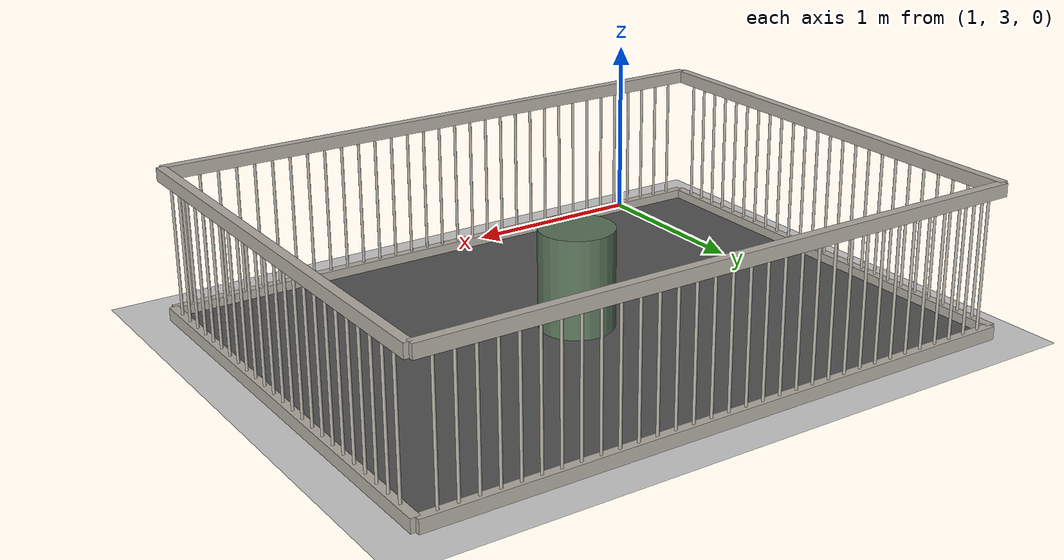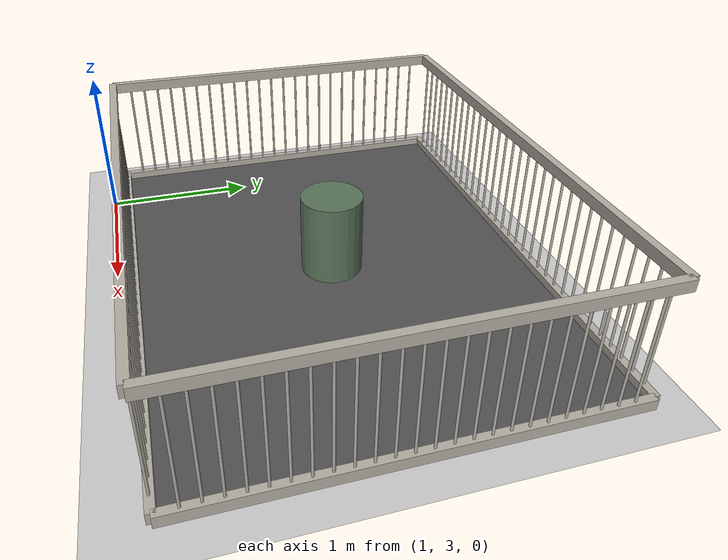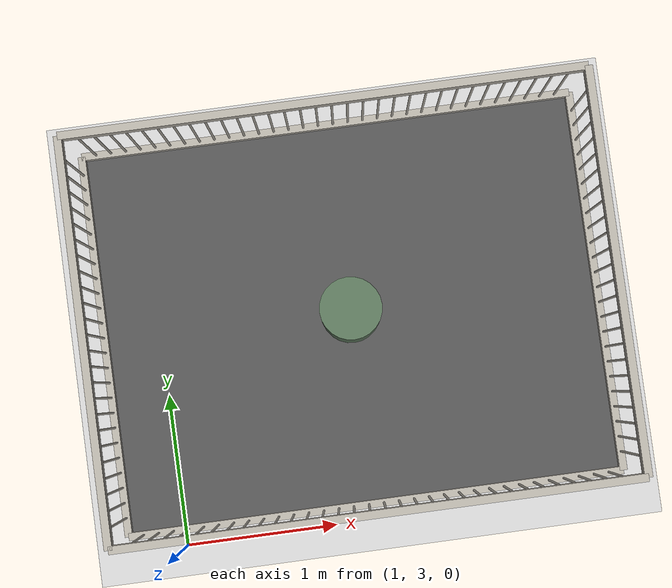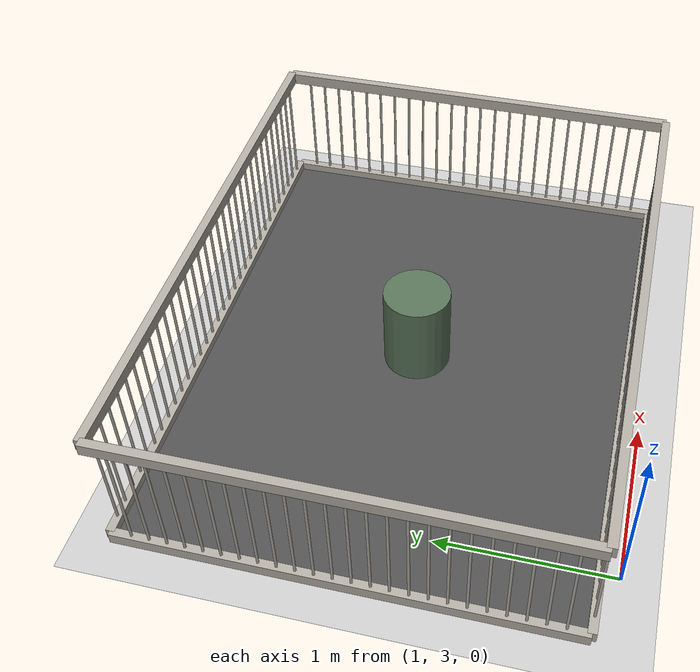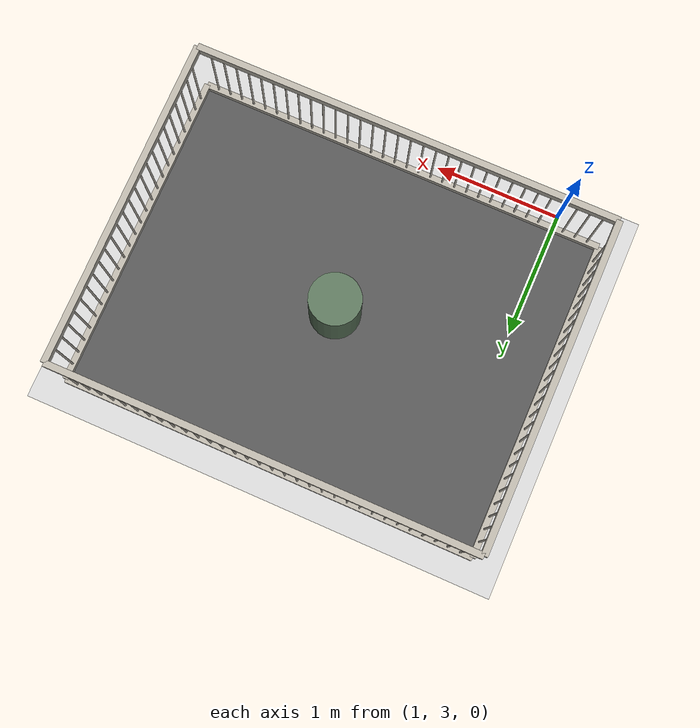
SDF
<sdf version="1.9">
 <world name="pig_pen_16units_world">
  <model name="ground_plane">
   <static>true</static>
   <link name="link">
    <collision name="collision">
     <geometry><plane><normal>0 0 1</normal><size>30 30</size></plane></geometry>
     <surface><friction><ode><mu>1.0</mu><mu2>1.0</mu2></ode></friction></surface>
    </collision>
    <visual name="visual">
     <geometry><plane><normal>0 0 1</normal><size>30 30</size></plane></geometry>
     <material>
      <ambient>0.8 0.8 0.8 1</ambient>
      <diffuse>0.8 0.8 0.8 1</diffuse>
      <specular>0.2 0.2 0.2 1</specular>
     </material>
    </visual>
   </link>
  </model>
  <model name="pen13">
   <pose>2.275 4.385 0 0 0 0</pose>
   <static>true</static>
   <link name="floor">
    <pose>0 0 0.01 0 0 0</pose>
    <collision name="collision"><geometry><box><size>3.30 2.55 0.02</size></box></geometry></collision>
    <visual name="visual">
     <geometry><box><size>3.30 2.55 0.02</size></box></geometry>
     <material>
      <ambient>0.25 0.25 0.25 1</ambient>
      <diffuse>0.32 0.32 0.32 1</diffuse>
      <specular>0.05 0.05 0.05 1</specular>
     </material>
    </visual>
   </link>
   <link name="left_wall">
    <pose>0 1.275 0.415 0 0 0</pose>
    <collision name="top_rail_col">
     <pose>0 0 0.38 0 0 0</pose>
     <geometry><box><size>3.30 0.05 0.07</size></box></geometry>
    </collision>
    <visual name="top_rail_vis">
     <pose>0 0 0.38 0 0 0</pose>
     <geometry><box><size>3.30 0.05 0.07</size></box></geometry>
     <material><ambient>0.70 0.68 0.64 1</ambient><diffuse>0.70 0.68 0.64 1</diffuse></material>
    </visual>
    <collision name="bottom_rail_col">
     <pose>0 0 -0.38 0 0 0</pose>
     <geometry><box><size>3.30 0.05 0.07</size></box></geometry>
    </collision>
    <visual name="bottom_rail_vis">
     <pose>0 0 -0.38 0 0 0</pose>
     <geometry><box><size>3.30 0.05 0.07</size></box></geometry>
     <material><ambient>0.70 0.68 0.64 1</ambient><diffuse>0.70 0.68 0.64 1</diffuse></material>
    </visual>
    <collision name="bar_01_col">
     <pose>-1.55 0 0 0 0 0</pose>
     <geometry><cylinder><radius>0.0075</radius><length>0.69</length></cylinder></geometry>
    </collision>
    <visual name="bar_01_vis">
     <pose>-1.55 0 0 0 0 0</pose>
     <geometry><cylinder><radius>0.0075</radius><length>0.69</length></cylinder></geometry>
     <material><ambient>0.70 0.68 0.64 1</ambient><diffuse>0.70 0.68 0.64 1</diffuse></material>
    </visual>
    <collision name="bar_02_col">
     <pose>-1.45 0 0 0 0 0</pose>
     <geometry><cylinder><radius>0.0075</radius><length>0.69</length></cylinder></geometry>
    </collision>
    <visual name="bar_02_vis">
     <pose>-1.45 0 0 0 0 0</pose>
     <geometry><cylinder><radius>0.0075</radius><length>0.69</length></cylinder></geometry>
     <material><ambient>0.70 0.68 0.64 1</ambient><diffuse>0.70 0.68 0.64 1</diffuse></material>
    </visual>
    <collision name="bar_03_col">
     <pose>-1.35 0 0 0 0 0</pose>
     <geometry><cylinder><radius>0.0075</radius><length>0.69</length></cylinder></geometry>
    </collision>
    <visual name="bar_03_vis">
     <pose>-1.35 0 0 0 0 0</pose>
     <geometry><cylinder><radius>0.0075</radius><length>0.69</length></cylinder></geometry>
     <material><ambient>0.70 0.68 0.64 1</ambient><diffuse>0.70 0.68 0.64 1</diffuse></material>
    </visual>
    <collision name="bar_04_col">
     <pose>-1.25 0 0 0 0 0</pose>
     <geometry><cylinder><radius>0.0075</radius><length>0.69</length></cylinder></geometry>
    </collision>
    <visual name="bar_04_vis">
     <pose>-1.25 0 0 0 0 0</pose>
     <geometry><cylinder><radius>0.0075</radius><length>0.69</length></cylinder></geometry>
     <material><ambient>0.70 0.68 0.64 1</ambient><diffuse>0.70 0.68 0.64 1</diffuse></material>
    </visual>
    <collision name="bar_05_col">
     <pose>-1.15 0 0 0 0 0</pose>
     <geometry><cylinder><radius>0.0075</radius><length>0.69</length></cylinder></geometry>
    </collision>
    <visual name="bar_05_vis">
     <pose>-1.15 0 0 0 0 0</pose>
     <geometry><cylinder><radius>0.0075</radius><length>0.69</length></cylinder></geometry>
     <material><ambient>0.70 0.68 0.64 1</ambient><diffuse>0.70 0.68 0.64 1</diffuse></material>
    </visual>
    <collision name="bar_06_col">
     <pose>-1.05 0 0 0 0 0</pose>
     <geometry><cylinder><radius>0.0075</radius><length>0.69</length></cylinder></geometry>
    </collision>
    <visual name="bar_06_vis">
     <pose>-1.05 0 0 0 0 0</pose>
     <geometry><cylinder><radius>0.0075</radius><length>0.69</length></cylinder></geometry>
     <material><ambient>0.70 0.68 0.64 1</ambient><diffuse>0.70 0.68 0.64 1</diffuse></material>
    </visual>
    <collision name="bar_07_col">
     <pose>-0.95 0 0 0 0 0</pose>
     <geometry><cylinder><radius>0.0075</radius><length>0.69</length></cylinder></geometry>
    </collision>
    <visual name="bar_07_vis">
     <pose>-0.95 0 0 0 0 0</pose>
     <geometry><cylinder><radius>0.0075</radius><length>0.69</length></cylinder></geometry>
     <material><ambient>0.70 0.68 0.64 1</ambient><diffuse>0.70 0.68 0.64 1</diffuse></material>
    </visual>
    <collision name="bar_08_col">
     <pose>-0.85 0 0 0 0 0</pose>
     <geometry><cylinder><radius>0.0075</radius><length>0.69</length></cylinder></geometry>
    </collision>
    <visual name="bar_08_vis">
     <pose>-0.85 0 0 0 0 0</pose>
     <geometry><cylinder><radius>0.0075</radius><length>0.69</length></cylinder></geometry>
     <material><ambient>0.70 0.68 0.64 1</ambient><diffuse>0.70 0.68 0.64 1</diffuse></material>
    </visual>
    <collision name="bar_09_col">
     <pose>-0.75 0 0 0 0 0</pose>
     <geometry><cylinder><radius>0.0075</radius><length>0.69</length></cylinder></geometry>
    </collision>
    <visual name="bar_09_vis">
     <pose>-0.75 0 0 0 0 0</pose>
     <geometry><cylinder><radius>0.0075</radius><length>0.69</length></cylinder></geometry>
     <material><ambient>0.70 0.68 0.64 1</ambient><diffuse>0.70 0.68 0.64 1</diffuse></material>
    </visual>
    <collision name="bar_10_col">
     <pose>-0.65 0 0 0 0 0</pose>
     <geometry><cylinder><radius>0.0075</radius><length>0.69</length></cylinder></geometry>
    </collision>
    <visual name="bar_10_vis">
     <pose>-0.65 0 0 0 0 0</pose>
     <geometry><cylinder><radius>0.0075</radius><length>0.69</length></cylinder></geometry>
     <material><ambient>0.70 0.68 0.64 1</ambient><diffuse>0.70 0.68 0.64 1</diffuse></material>
    </visual>
    <collision name="bar_11_col">
     <pose>-0.55 0 0 0 0 0</pose>
     <geometry><cylinder><radius>0.0075</radius><length>0.69</length></cylinder></geometry>
    </collision>
    <visual name="bar_11_vis">
     <pose>-0.55 0 0 0 0 0</pose>
     <geometry><cylinder><radius>0.0075</radius><length>0.69</length></cylinder></geometry>
     <material><ambient>0.70 0.68 0.64 1</ambient><diffuse>0.70 0.68 0.64 1</diffuse></material>
    </visual>
    <collision name="bar_12_col">
     <pose>-0.45 0 0 0 0 0</pose>
     <geometry><cylinder><radius>0.0075</radius><length>0.69</length></cylinder></geometry>
    </collision>
    <visual name="bar_12_vis">
     <pose>-0.45 0 0 0 0 0</pose>
     <geometry><cylinder><radius>0.0075</radius><length>0.69</length></cylinder></geometry>
     <material><ambient>0.70 0.68 0.64 1</ambient><diffuse>0.70 0.68 0.64 1</diffuse></material>
    </visual>
    <collision name="bar_13_col">
     <pose>-0.35 0 0 0 0 0</pose>
     <geometry><cylinder><radius>0.0075</radius><length>0.69</length></cylinder></geometry>
    </collision>
    <visual name="bar_13_vis">
     <pose>-0.35 0 0 0 0 0</pose>
     <geometry><cylinder><radius>0.0075</radius><length>0.69</length></cylinder></geometry>
     <material><ambient>0.70 0.68 0.64 1</ambient><diffuse>0.70 0.68 0.64 1</diffuse></material>
    </visual>
    <collision name="bar_14_col">
     <pose>-0.25 0 0 0 0 0</pose>
     <geometry><cylinder><radius>0.0075</radius><length>0.69</length></cylinder></geometry>
    </collision>
    <visual name="bar_14_vis">
     <pose>-0.25 0 0 0 0 0</pose>
     <geometry><cylinder><radius>0.0075</radius><length>0.69</length></cylinder></geometry>
     <material><ambient>0.70 0.68 0.64 1</ambient><diffuse>0.70 0.68 0.64 1</diffuse></material>
    </visual>
    <collision name="bar_15_col">
     <pose>-0.15 0 0 0 0 0</pose>
     <geometry><cylinder><radius>0.0075</radius><length>0.69</length></cylinder></geometry>
    </collision>
    <visual name="bar_15_vis">
     <pose>-0.15 0 0 0 0 0</pose>
     <geometry><cylinder><radius>0.0075</radius><length>0.69</length></cylinder></geometry>
     <material><ambient>0.70 0.68 0.64 1</ambient><diffuse>0.70 0.68 0.64 1</diffuse></material>
    </visual>
    <collision name="bar_16_col">
     <pose>-0.05 0 0 0 0 0</pose>
     <geometry><cylinder><radius>0.0075</radius><length>0.69</length></cylinder></geometry>
    </collision>
    <visual name="bar_16_vis">
     <pose>-0.05 0 0 0 0 0</pose>
     <geometry><cylinder><radius>0.0075</radius><length>0.69</length></cylinder></geometry>
     <material><ambient>0.70 0.68 0.64 1</ambient><diffuse>0.70 0.68 0.64 1</diffuse></material>
    </visual>
    <collision name="bar_17_col">
     <pose>0.05 0 0 0 0 0</pose>
     <geometry><cylinder><radius>0.0075</radius><length>0.69</length></cylinder></geometry>
    </collision>
    <visual name="bar_17_vis">
     <pose>0.05 0 0 0 0 0</pose>
     <geometry><cylinder><radius>0.0075</radius><length>0.69</length></cylinder></geometry>
     <material><ambient>0.70 0.68 0.64 1</ambient><diffuse>0.70 0.68 0.64 1</diffuse></material>
    </visual>
    <collision name="bar_18_col">
     <pose>0.15 0 0 0 0 0</pose>
     <geometry><cylinder><radius>0.0075</radius><length>0.69</length></cylinder></geometry>
    </collision>
    <visual name="bar_18_vis">
     <pose>0.15 0 0 0 0 0</pose>
     <geometry><cylinder><radius>0.0075</radius><length>0.69</length></cylinder></geometry>
     <material><ambient>0.70 0.68 0.64 1</ambient><diffuse>0.70 0.68 0.64 1</diffuse></material>
    </visual>
    <collision name="bar_19_col">
     <pose>0.25 0 0 0 0 0</pose>
     <geometry><cylinder><radius>0.0075</radius><length>0.69</length></cylinder></geometry>
    </collision>
    <visual name="bar_19_vis">
     <pose>0.25 0 0 0 0 0</pose>
     <geometry><cylinder><radius>0.0075</radius><length>0.69</length></cylinder></geometry>
     <material><ambient>0.70 0.68 0.64 1</ambient><diffuse>0.70 0.68 0.64 1</diffuse></material>
    </visual>
    <collision name="bar_20_col">
     <pose>0.35 0 0 0 0 0</pose>
     <geometry><cylinder><radius>0.0075</radius><length>0.69</length></cylinder></geometry>
    </collision>
    <visual name="bar_20_vis">
     <pose>0.35 0 0 0 0 0</pose>
     <geometry><cylinder><radius>0.0075</radius><length>0.69</length></cylinder></geometry>
     <material><ambient>0.70 0.68 0.64 1</ambient><diffuse>0.70 0.68 0.64 1</diffuse></material>
    </visual>
    <collision name="bar_21_col">
     <pose>0.45 0 0 0 0 0</pose>
     <geometry><cylinder><radius>0.0075</radius><length>0.69</length></cylinder></geometry>
    </collision>
    <visual name="bar_21_vis">
     <pose>0.45 0 0 0 0 0</pose>
     <geometry><cylinder><radius>0.0075</radius><length>0.69</length></cylinder></geometry>
     <material><ambient>0.70 0.68 0.64 1</ambient><diffuse>0.70 0.68 0.64 1</diffuse></material>
    </visual>
    <collision name="bar_22_col">
     <pose>0.55 0 0 0 0 0</pose>
     <geometry><cylinder><radius>0.0075</radius><length>0.69</length></cylinder></geometry>
    </collision>
    <visual name="bar_22_vis">
     <pose>0.55 0 0 0 0 0</pose>
     <geometry><cylinder><radius>0.0075</radius><length>0.69</length></cylinder></geometry>
     <material><ambient>0.70 0.68 0.64 1</ambient><diffuse>0.70 0.68 0.64 1</diffuse></material>
    </visual>
    <collision name="bar_23_col">
     <pose>0.65 0 0 0 0 0</pose>
     <geometry><cylinder><radius>0.0075</radius><length>0.69</length></cylinder></geometry>
    </collision>
    <visual name="bar_23_vis">
     <pose>0.65 0 0 0 0 0</pose>
     <geometry><cylinder><radius>0.0075</radius><length>0.69</length></cylinder></geometry>
     <material><ambient>0.70 0.68 0.64 1</ambient><diffuse>0.70 0.68 0.64 1</diffuse></material>
    </visual>
    <collision name="bar_24_col">
     <pose>0.75 0 0 0 0 0</pose>
     <geometry><cylinder><radius>0.0075</radius><length>0.69</length></cylinder></geometry>
    </collision>
    <visual name="bar_24_vis">
     <pose>0.75 0 0 0 0 0</pose>
     <geometry><cylinder><radius>0.0075</radius><length>0.69</length></cylinder></geometry>
     <material><ambient>0.70 0.68 0.64 1</ambient><diffuse>0.70 0.68 0.64 1</diffuse></material>
    </visual>
    <collision name="bar_25_col">
     <pose>0.85 0 0 0 0 0</pose>
     <geometry><cylinder><radius>0.0075</radius><length>0.69</length></cylinder></geometry>
    </collision>
    <visual name="bar_25_vis">
     <pose>0.85 0 0 0 0 0</pose>
     <geometry><cylinder><radius>0.0075</radius><length>0.69</length></cylinder></geometry>
     <material><ambient>0.70 0.68 0.64 1</ambient><diffuse>0.70 0.68 0.64 1</diffuse></material>
    </visual>
    <collision name="bar_26_col">
     <pose>0.95 0 0 0 0 0</pose>
     <geometry><cylinder><radius>0.0075</radius><length>0.69</length></cylinder></geometry>
    </collision>
    <visual name="bar_26_vis">
     <pose>0.95 0 0 0 0 0</pose>
     <geometry><cylinder><radius>0.0075</radius><length>0.69</length></cylinder></geometry>
     <material><ambient>0.70 0.68 0.64 1</ambient><diffuse>0.70 0.68 0.64 1</diffuse></material>
    </visual>
    <collision name="bar_27_col">
     <pose>1.05 0 0 0 0 0</pose>
     <geometry><cylinder><radius>0.0075</radius><length>0.69</length></cylinder></geometry>
    </collision>
    <visual name="bar_27_vis">
     <pose>1.05 0 0 0 0 0</pose>
     <geometry><cylinder><radius>0.0075</radius><length>0.69</length></cylinder></geometry>
     <material><ambient>0.70 0.68 0.64 1</ambient><diffuse>0.70 0.68 0.64 1</diffuse></material>
    </visual>
    <collision name="bar_28_col">
     <pose>1.15 0 0 0 0 0</pose>
     <geometry><cylinder><radius>0.0075</radius><length>0.69</length></cylinder></geometry>
    </collision>
    <visual name="bar_28_vis">
     <pose>1.15 0 0 0 0 0</pose>
     <geometry><cylinder><radius>0.0075</radius><length>0.69</length></cylinder></geometry>
     <material><ambient>0.70 0.68 0.64 1</ambient><diffuse>0.70 0.68 0.64 1</diffuse></material>
    </visual>
    <collision name="bar_29_col">
     <pose>1.25 0 0 0 0 0</pose>
     <geometry><cylinder><radius>0.0075</radius><length>0.69</length></cylinder></geometry>
    </collision>
    <visual name="bar_29_vis">
     <pose>1.25 0 0 0 0 0</pose>
     <geometry><cylinder><radius>0.0075</radius><length>0.69</length></cylinder></geometry>
     <material><ambient>0.70 0.68 0.64 1</ambient><diffuse>0.70 0.68 0.64 1</diffuse></material>
    </visual>
    <collision name="bar_30_col">
     <pose>1.35 0 0 0 0 0</pose>
     <geometry><cylinder><radius>0.0075</radius><length>0.69</length></cylinder></geometry>
    </collision>
    <visual name="bar_30_vis">
     <pose>1.35 0 0 0 0 0</pose>
     <geometry><cylinder><radius>0.0075</radius><length>0.69</length></cylinder></geometry>
     <material><ambient>0.70 0.68 0.64 1</ambient><diffuse>0.70 0.68 0.64 1</diffuse></material>
    </visual>
    <collision name="bar_31_col">
     <pose>1.45 0 0 0 0 0</pose>
     <geometry><cylinder><radius>0.0075</radius><length>0.69</length></cylinder></geometry>
    </collision>
    <visual name="bar_31_vis">
     <pose>1.45 0 0 0 0 0</pose>
     <geometry><cylinder><radius>0.0075</radius><length>0.69</length></cylinder></geometry>
     <material><ambient>0.70 0.68 0.64 1</ambient><diffuse>0.70 0.68 0.64 1</diffuse></material>
    </visual>
    <collision name="bar_32_col">
     <pose>1.55 0 0 0 0 0</pose>
     <geometry><cylinder><radius>0.0075</radius><length>0.69</length></cylinder></geometry>
    </collision>
    <visual name="bar_32_vis">
     <pose>1.55 0 0 0 0 0</pose>
     <geometry><cylinder><radius>0.0075</radius><length>0.69</length></cylinder></geometry>
     <material><ambient>0.70 0.68 0.64 1</ambient><diffuse>0.70 0.68 0.64 1</diffuse></material>
    </visual>
   </link>
   <link name="right_wall">
    <pose>0 -1.275 0.415 0 0 0</pose>
    <collision name="top_rail_col">
     <pose>0 0 0.38 0 0 0</pose>
     <geometry><box><size>3.30 0.05 0.07</size></box></geometry>
    </collision>
    <visual name="top_rail_vis">
     <pose>0 0 0.38 0 0 0</pose>
     <geometry><box><size>3.30 0.05 0.07</size></box></geometry>
     <material><ambient>0.70 0.68 0.64 1</ambient><diffuse>0.70 0.68 0.64 1</diffuse></material>
    </visual>
    <collision name="bottom_rail_col">
     <pose>0 0 -0.38 0 0 0</pose>
     <geometry><box><size>3.30 0.05 0.07</size></box></geometry>
    </collision>
    <visual name="bottom_rail_vis">
     <pose>0 0 -0.38 0 0 0</pose>
     <geometry><box><size>3.30 0.05 0.07</size></box></geometry>
     <material><ambient>0.70 0.68 0.64 1</ambient><diffuse>0.70 0.68 0.64 1</diffuse></material>
    </visual>
    <collision name="bar_01_col">
     <pose>-1.55 0 0 0 0 0</pose>
     <geometry><cylinder><radius>0.0075</radius><length>0.69</length></cylinder></geometry>
    </collision>
    <visual name="bar_01_vis">
     <pose>-1.55 0 0 0 0 0</pose>
     <geometry><cylinder><radius>0.0075</radius><length>0.69</length></cylinder></geometry>
     <material><ambient>0.70 0.68 0.64 1</ambient><diffuse>0.70 0.68 0.64 1</diffuse></material>
    </visual>
    <collision name="bar_02_col">
     <pose>-1.45 0 0 0 0 0</pose>
     <geometry><cylinder><radius>0.0075</radius><length>0.69</length></cylinder></geometry>
    </collision>
    <visual name="bar_02_vis">
     <pose>-1.45 0 0 0 0 0</pose>
     <geometry><cylinder><radius>0.0075</radius><length>0.69</length></cylinder></geometry>
     <material><ambient>0.70 0.68 0.64 1</ambient><diffuse>0.70 0.68 0.64 1</diffuse></material>
    </visual>
    <collision name="bar_03_col">
     <pose>-1.35 0 0 0 0 0</pose>
     <geometry><cylinder><radius>0.0075</radius><length>0.69</length></cylinder></geometry>
    </collision>
    <visual name="bar_03_vis">
     <pose>-1.35 0 0 0 0 0</pose>
     <geometry><cylinder><radius>0.0075</radius><length>0.69</length></cylinder></geometry>
     <material><ambient>0.70 0.68 0.64 1</ambient><diffuse>0.70 0.68 0.64 1</diffuse></material>
    </visual>
    <collision name="bar_04_col">
     <pose>-1.25 0 0 0 0 0</pose>
     <geometry><cylinder><radius>0.0075</radius><length>0.69</length></cylinder></geometry>
    </collision>
    <visual name="bar_04_vis">
     <pose>-1.25 0 0 0 0 0</pose>
     <geometry><cylinder><radius>0.0075</radius><length>0.69</length></cylinder></geometry>
     <material><ambient>0.70 0.68 0.64 1</ambient><diffuse>0.70 0.68 0.64 1</diffuse></material>
    </visual>
    <collision name="bar_05_col">
     <pose>-1.15 0 0 0 0 0</pose>
     <geometry><cylinder><radius>0.0075</radius><length>0.69</length></cylinder></geometry>
    </collision>
    <visual name="bar_05_vis">
     <pose>-1.15 0 0 0 0 0</pose>
     <geometry><cylinder><radius>0.0075</radius><length>0.69</length></cylinder></geometry>
     <material><ambient>0.70 0.68 0.64 1</ambient><diffuse>0.70 0.68 0.64 1</diffuse></material>
    </visual>
    <collision name="bar_06_col">
     <pose>-1.05 0 0 0 0 0</pose>
     <geometry><cylinder><radius>0.0075</radius><length>0.69</length></cylinder></geometry>
    </collision>
    <visual name="bar_06_vis">
     <pose>-1.05 0 0 0 0 0</pose>
     <geometry><cylinder><radius>0.0075</radius><length>0.69</length></cylinder></geometry>
     <material><ambient>0.70 0.68 0.64 1</ambient><diffuse>0.70 0.68 0.64 1</diffuse></material>
    </visual>
    <collision name="bar_07_col">
     <pose>-0.95 0 0 0 0 0</pose>
     <geometry><cylinder><radius>0.0075</radius><length>0.69</length></cylinder></geometry>
    </collision>
    <visual name="bar_07_vis">
     <pose>-0.95 0 0 0 0 0</pose>
     <geometry><cylinder><radius>0.0075</radius><length>0.69</length></cylinder></geometry>
     <material><ambient>0.70 0.68 0.64 1</ambient><diffuse>0.70 0.68 0.64 1</diffuse></material>
    </visual>
    <collision name="bar_08_col">
     <pose>-0.85 0 0 0 0 0</pose>
     <geometry><cylinder><radius>0.0075</radius><length>0.69</length></cylinder></geometry>
    </collision>
    <visual name="bar_08_vis">
     <pose>-0.85 0 0 0 0 0</pose>
     <geometry><cylinder><radius>0.0075</radius><length>0.69</length></cylinder></geometry>
     <material><ambient>0.70 0.68 0.64 1</ambient><diffuse>0.70 0.68 0.64 1</diffuse></material>
    </visual>
    <collision name="bar_09_col">
     <pose>-0.75 0 0 0 0 0</pose>
     <geometry><cylinder><radius>0.0075</radius><length>0.69</length></cylinder></geometry>
    </collision>
    <visual name="bar_09_vis">
     <pose>-0.75 0 0 0 0 0</pose>
     <geometry><cylinder><radius>0.0075</radius><length>0.69</length></cylinder></geometry>
     <material><ambient>0.70 0.68 0.64 1</ambient><diffuse>0.70 0.68 0.64 1</diffuse></material>
    </visual>
    <collision name="bar_10_col">
     <pose>-0.65 0 0 0 0 0</pose>
     <geometry><cylinder><radius>0.0075</radius><length>0.69</length></cylinder></geometry>
    </collision>
    <visual name="bar_10_vis">
     <pose>-0.65 0 0 0 0 0</pose>
     <geometry><cylinder><radius>0.0075</radius><length>0.69</length></cylinder></geometry>
     <material><ambient>0.70 0.68 0.64 1</ambient><diffuse>0.70 0.68 0.64 1</diffuse></material>
    </visual>
    <collision name="bar_11_col">
     <pose>-0.55 0 0 0 0 0</pose>
     <geometry><cylinder><radius>0.0075</radius><length>0.69</length></cylinder></geometry>
    </collision>
    <visual name="bar_11_vis">
     <pose>-0.55 0 0 0 0 0</pose>
     <geometry><cylinder><radius>0.0075</radius><length>0.69</length></cylinder></geometry>
     <material><ambient>0.70 0.68 0.64 1</ambient><diffuse>0.70 0.68 0.64 1</diffuse></material>
    </visual>
    <collision name="bar_12_col">
     <pose>-0.45 0 0 0 0 0</pose>
     <geometry><cylinder><radius>0.0075</radius><length>0.69</length></cylinder></geometry>
    </collision>
    <visual name="bar_12_vis">
     <pose>-0.45 0 0 0 0 0</pose>
     <geometry><cylinder><radius>0.0075</radius><length>0.69</length></cylinder></geometry>
     <material><ambient>0.70 0.68 0.64 1</ambient><diffuse>0.70 0.68 0.64 1</diffuse></material>
    </visual>
    <collision name="bar_13_col">
     <pose>-0.35 0 0 0 0 0</pose>
     <geometry><cylinder><radius>0.0075</radius><length>0.69</length></cylinder></geometry>
    </collision>
    <visual name="bar_13_vis">
     <pose>-0.35 0 0 0 0 0</pose>
     <geometry><cylinder><radius>0.0075</radius><length>0.69</length></cylinder></geometry>
     <material><ambient>0.70 0.68 0.64 1</ambient><diffuse>0.70 0.68 0.64 1</diffuse></material>
    </visual>
    <collision name="bar_14_col">
     <pose>-0.25 0 0 0 0 0</pose>
     <geometry><cylinder><radius>0.0075</radius><length>0.69</length></cylinder></geometry>
    </collision>
    <visual name="bar_14_vis">
     <pose>-0.25 0 0 0 0 0</pose>
     <geometry><cylinder><radius>0.0075</radius><length>0.69</length></cylinder></geometry>
     <material><ambient>0.70 0.68 0.64 1</ambient><diffuse>0.70 0.68 0.64 1</diffuse></material>
    </visual>
    <collision name="bar_15_col">
     <pose>-0.15 0 0 0 0 0</pose>
     <geometry><cylinder><radius>0.0075</radius><length>0.69</length></cylinder></geometry>
    </collision>
    <visual name="bar_15_vis">
     <pose>-0.15 0 0 0 0 0</pose>
     <geometry><cylinder><radius>0.0075</radius><length>0.69</length></cylinder></geometry>
     <material><ambient>0.70 0.68 0.64 1</ambient><diffuse>0.70 0.68 0.64 1</diffuse></material>
    </visual>
    <collision name="bar_16_col">
     <pose>-0.05 0 0 0 0 0</pose>
     <geometry><cylinder><radius>0.0075</radius><length>0.69</length></cylinder></geometry>
    </collision>
    <visual name="bar_16_vis">
     <pose>-0.05 0 0 0 0 0</pose>
     <geometry><cylinder><radius>0.0075</radius><length>0.69</length></cylinder></geometry>
     <material><ambient>0.70 0.68 0.64 1</ambient><diffuse>0.70 0.68 0.64 1</diffuse></material>
    </visual>
    <collision name="bar_17_col">
     <pose>0.05 0 0 0 0 0</pose>
     <geometry><cylinder><radius>0.0075</radius><length>0.69</length></cylinder></geometry>
    </collision>
    <visual name="bar_17_vis">
     <pose>0.05 0 0 0 0 0</pose>
     <geometry><cylinder><radius>0.0075</radius><length>0.69</length></cylinder></geometry>
     <material><ambient>0.70 0.68 0.64 1</ambient><diffuse>0.70 0.68 0.64 1</diffuse></material>
    </visual>
    <collision name="bar_18_col">
     <pose>0.15 0 0 0 0 0</pose>
     <geometry><cylinder><radius>0.0075</radius><length>0.69</length></cylinder></geometry>
    </collision>
    <visual name="bar_18_vis">
     <pose>0.15 0 0 0 0 0</pose>
     <geometry><cylinder><radius>0.0075</radius><length>0.69</length></cylinder></geometry>
     <material><ambient>0.70 0.68 0.64 1</ambient><diffuse>0.70 0.68 0.64 1</diffuse></material>
    </visual>
    <collision name="bar_19_col">
     <pose>0.25 0 0 0 0 0</pose>
     <geometry><cylinder><radius>0.0075</radius><length>0.69</length></cylinder></geometry>
    </collision>
    <visual name="bar_19_vis">
     <pose>0.25 0 0 0 0 0</pose>
     <geometry><cylinder><radius>0.0075</radius><length>0.69</length></cylinder></geometry>
     <material><ambient>0.70 0.68 0.64 1</ambient><diffuse>0.70 0.68 0.64 1</diffuse></material>
    </visual>
    <collision name="bar_20_col">
     <pose>0.35 0 0 0 0 0</pose>
     <geometry><cylinder><radius>0.0075</radius><length>0.69</length></cylinder></geometry>
    </collision>
    <visual name="bar_20_vis">
     <pose>0.35 0 0 0 0 0</pose>
     <geometry><cylinder><radius>0.0075</radius><length>0.69</length></cylinder></geometry>
     <material><ambient>0.70 0.68 0.64 1</ambient><diffuse>0.70 0.68 0.64 1</diffuse></material>
    </visual>
    <collision name="bar_21_col">
     <pose>0.45 0 0 0 0 0</pose>
     <geometry><cylinder><radius>0.0075</radius><length>0.69</length></cylinder></geometry>
    </collision>
    <visual name="bar_21_vis">
     <pose>0.45 0 0 0 0 0</pose>
     <geometry><cylinder><radius>0.0075</radius><length>0.69</length></cylinder></geometry>
     <material><ambient>0.70 0.68 0.64 1</ambient><diffuse>0.70 0.68 0.64 1</diffuse></material>
    </visual>
    <collision name="bar_22_col">
     <pose>0.55 0 0 0 0 0</pose>
     <geometry><cylinder><radius>0.0075</radius><length>0.69</length></cylinder></geometry>
    </collision>
    <visual name="bar_22_vis">
     <pose>0.55 0 0 0 0 0</pose>
     <geometry><cylinder><radius>0.0075</radius><length>0.69</length></cylinder></geometry>
     <material><ambient>0.70 0.68 0.64 1</ambient><diffuse>0.70 0.68 0.64 1</diffuse></material>
    </visual>
    <collision name="bar_23_col">
     <pose>0.65 0 0 0 0 0</pose>
     <geometry><cylinder><radius>0.0075</radius><length>0.69</length></cylinder></geometry>
    </collision>
    <visual name="bar_23_vis">
     <pose>0.65 0 0 0 0 0</pose>
     <geometry><cylinder><radius>0.0075</radius><length>0.69</length></cylinder></geometry>
     <material><ambient>0.70 0.68 0.64 1</ambient><diffuse>0.70 0.68 0.64 1</diffuse></material>
    </visual>
    <collision name="bar_24_col">
     <pose>0.75 0 0 0 0 0</pose>
     <geometry><cylinder><radius>0.0075</radius><length>0.69</length></cylinder></geometry>
    </collision>
    <visual name="bar_24_vis">
     <pose>0.75 0 0 0 0 0</pose>
     <geometry><cylinder><radius>0.0075</radius><length>0.69</length></cylinder></geometry>
     <material><ambient>0.70 0.68 0.64 1</ambient><diffuse>0.70 0.68 0.64 1</diffuse></material>
    </visual>
    <collision name="bar_25_col">
     <pose>0.85 0 0 0 0 0</pose>
     <geometry><cylinder><radius>0.0075</radius><length>0.69</length></cylinder></geometry>
    </collision>
    <visual name="bar_25_vis">
     <pose>0.85 0 0 0 0 0</pose>
     <geometry><cylinder><radius>0.0075</radius><length>0.69</length></cylinder></geometry>
     <material><ambient>0.70 0.68 0.64 1</ambient><diffuse>0.70 0.68 0.64 1</diffuse></material>
    </visual>
    <collision name="bar_26_col">
     <pose>0.95 0 0 0 0 0</pose>
     <geometry><cylinder><radius>0.0075</radius><length>0.69</length></cylinder></geometry>
    </collision>
    <visual name="bar_26_vis">
     <pose>0.95 0 0 0 0 0</pose>
     <geometry><cylinder><radius>0.0075</radius><length>0.69</length></cylinder></geometry>
     <material><ambient>0.70 0.68 0.64 1</ambient><diffuse>0.70 0.68 0.64 1</diffuse></material>
    </visual>
    <collision name="bar_27_col">
     <pose>1.05 0 0 0 0 0</pose>
     <geometry><cylinder><radius>0.0075</radius><length>0.69</length></cylinder></geometry>
    </collision>
    <visual name="bar_27_vis">
     <pose>1.05 0 0 0 0 0</pose>
     <geometry><cylinder><radius>0.0075</radius><length>0.69</length></cylinder></geometry>
     <material><ambient>0.70 0.68 0.64 1</ambient><diffuse>0.70 0.68 0.64 1</diffuse></material>
    </visual>
    <collision name="bar_28_col">
     <pose>1.15 0 0 0 0 0</pose>
     <geometry><cylinder><radius>0.0075</radius><length>0.69</length></cylinder></geometry>
    </collision>
    <visual name="bar_28_vis">
     <pose>1.15 0 0 0 0 0</pose>
     <geometry><cylinder><radius>0.0075</radius><length>0.69</length></cylinder></geometry>
     <material><ambient>0.70 0.68 0.64 1</ambient><diffuse>0.70 0.68 0.64 1</diffuse></material>
    </visual>
    <collision name="bar_29_col">
     <pose>1.25 0 0 0 0 0</pose>
     <geometry><cylinder><radius>0.0075</radius><length>0.69</length></cylinder></geometry>
    </collision>
    <visual name="bar_29_vis">
     <pose>1.25 0 0 0 0 0</pose>
     <geometry><cylinder><radius>0.0075</radius><length>0.69</length></cylinder></geometry>
     <material><ambient>0.70 0.68 0.64 1</ambient><diffuse>0.70 0.68 0.64 1</diffuse></material>
    </visual>
    <collision name="bar_30_col">
     <pose>1.35 0 0 0 0 0</pose>
     <geometry><cylinder><radius>0.0075</radius><length>0.69</length></cylinder></geometry>
    </collision>
    <visual name="bar_30_vis">
     <pose>1.35 0 0 0 0 0</pose>
     <geometry><cylinder><radius>0.0075</radius><length>0.69</length></cylinder></geometry>
     <material><ambient>0.70 0.68 0.64 1</ambient><diffuse>0.70 0.68 0.64 1</diffuse></material>
    </visual>
    <collision name="bar_31_col">
     <pose>1.45 0 0 0 0 0</pose>
     <geometry><cylinder><radius>0.0075</radius><length>0.69</length></cylinder></geometry>
    </collision>
    <visual name="bar_31_vis">
     <pose>1.45 0 0 0 0 0</pose>
     <geometry><cylinder><radius>0.0075</radius><length>0.69</length></cylinder></geometry>
     <material><ambient>0.70 0.68 0.64 1</ambient><diffuse>0.70 0.68 0.64 1</diffuse></material>
    </visual>
    <collision name="bar_32_col">
     <pose>1.55 0 0 0 0 0</pose>
     <geometry><cylinder><radius>0.0075</radius><length>0.69</length></cylinder></geometry>
    </collision>
    <visual name="bar_32_vis">
     <pose>1.55 0 0 0 0 0</pose>
     <geometry><cylinder><radius>0.0075</radius><length>0.69</length></cylinder></geometry>
     <material><ambient>0.70 0.68 0.64 1</ambient><diffuse>0.70 0.68 0.64 1</diffuse></material>
    </visual>
   </link>
   <link name="back_wall">
    <pose>1.65 0 0.415 0 0 0</pose>
    <collision name="top_rail_col">
     <pose>0 0 0.38 0 0 0</pose>
     <geometry><box><size>0.05 2.55 0.07</size></box></geometry>
    </collision>
    <visual name="top_rail_vis">
     <pose>0 0 0.38 0 0 0</pose>
     <geometry><box><size>0.05 2.55 0.07</size></box></geometry>
     <material><ambient>0.70 0.68 0.64 1</ambient><diffuse>0.70 0.68 0.64 1</diffuse></material>
    </visual>
    <collision name="bottom_rail_col">
     <pose>0 0 -0.38 0 0 0</pose>
     <geometry><box><size>0.05 2.55 0.07</size></box></geometry>
    </collision>
    <visual name="bottom_rail_vis">
     <pose>0 0 -0.38 0 0 0</pose>
     <geometry><box><size>0.05 2.55 0.07</size></box></geometry>
     <material><ambient>0.70 0.68 0.64 1</ambient><diffuse>0.70 0.68 0.64 1</diffuse></material>
    </visual>
    <collision name="bar_01_col">
     <pose>0 -1.15 0 0 0 0</pose>
     <geometry><cylinder><radius>0.0075</radius><length>0.69</length></cylinder></geometry>
    </collision>
    <visual name="bar_01_vis">
     <pose>0 -1.15 0 0 0 0</pose>
     <geometry><cylinder><radius>0.0075</radius><length>0.69</length></cylinder></geometry>
     <material><ambient>0.70 0.68 0.64 1</ambient><diffuse>0.70 0.68 0.64 1</diffuse></material>
    </visual>
    <collision name="bar_02_col">
     <pose>0 -1.05 0 0 0 0</pose>
     <geometry><cylinder><radius>0.0075</radius><length>0.69</length></cylinder></geometry>
    </collision>
    <visual name="bar_02_vis">
     <pose>0 -1.05 0 0 0 0</pose>
     <geometry><cylinder><radius>0.0075</radius><length>0.69</length></cylinder></geometry>
     <material><ambient>0.70 0.68 0.64 1</ambient><diffuse>0.70 0.68 0.64 1</diffuse></material>
    </visual>
    <collision name="bar_03_col">
     <pose>0 -0.95 0 0 0 0</pose>
     <geometry><cylinder><radius>0.0075</radius><length>0.69</length></cylinder></geometry>
    </collision>
    <visual name="bar_03_vis">
     <pose>0 -0.95 0 0 0 0</pose>
     <geometry><cylinder><radius>0.0075</radius><length>0.69</length></cylinder></geometry>
     <material><ambient>0.70 0.68 0.64 1</ambient><diffuse>0.70 0.68 0.64 1</diffuse></material>
    </visual>
    <collision name="bar_04_col">
     <pose>0 -0.85 0 0 0 0</pose>
     <geometry><cylinder><radius>0.0075</radius><length>0.69</length></cylinder></geometry>
    </collision>
    <visual name="bar_04_vis">
     <pose>0 -0.85 0 0 0 0</pose>
     <geometry><cylinder><radius>0.0075</radius><length>0.69</length></cylinder></geometry>
     <material><ambient>0.70 0.68 0.64 1</ambient><diffuse>0.70 0.68 0.64 1</diffuse></material>
    </visual>
    <collision name="bar_05_col">
     <pose>0 -0.75 0 0 0 0</pose>
     <geometry><cylinder><radius>0.0075</radius><length>0.69</length></cylinder></geometry>
    </collision>
    <visual name="bar_05_vis">
     <pose>0 -0.75 0 0 0 0</pose>
     <geometry><cylinder><radius>0.0075</radius><length>0.69</length></cylinder></geometry>
     <material><ambient>0.70 0.68 0.64 1</ambient><diffuse>0.70 0.68 0.64 1</diffuse></material>
    </visual>
    <collision name="bar_06_col">
     <pose>0 -0.65 0 0 0 0</pose>
     <geometry><cylinder><radius>0.0075</radius><length>0.69</length></cylinder></geometry>
    </collision>
    <visual name="bar_06_vis">
     <pose>0 -0.65 0 0 0 0</pose>
     <geometry><cylinder><radius>0.0075</radius><length>0.69</length></cylinder></geometry>
     <material><ambient>0.70 0.68 0.64 1</ambient><diffuse>0.70 0.68 0.64 1</diffuse></material>
    </visual>
    <collision name="bar_07_col">
     <pose>0 -0.55 0 0 0 0</pose>
     <geometry><cylinder><radius>0.0075</radius><length>0.69</length></cylinder></geometry>
    </collision>
    <visual name="bar_07_vis">
     <pose>0 -0.55 0 0 0 0</pose>
     <geometry><cylinder><radius>0.0075</radius><length>0.69</length></cylinder></geometry>
     <material><ambient>0.70 0.68 0.64 1</ambient><diffuse>0.70 0.68 0.64 1</diffuse></material>
    </visual>
    <collision name="bar_08_col">
     <pose>0 -0.45 0 0 0 0</pose>
     <geometry><cylinder><radius>0.0075</radius><length>0.69</length></cylinder></geometry>
    </collision>
    <visual name="bar_08_vis">
     <pose>0 -0.45 0 0 0 0</pose>
     <geometry><cylinder><radius>0.0075</radius><length>0.69</length></cylinder></geometry>
     <material><ambient>0.70 0.68 0.64 1</ambient><diffuse>0.70 0.68 0.64 1</diffuse></material>
    </visual>
    <collision name="bar_09_col">
     <pose>0 -0.35 0 0 0 0</pose>
     <geometry><cylinder><radius>0.0075</radius><length>0.69</length></cylinder></geometry>
    </collision>
    <visual name="bar_09_vis">
     <pose>0 -0.35 0 0 0 0</pose>
     <geometry><cylinder><radius>0.0075</radius><length>0.69</length></cylinder></geometry>
     <material><ambient>0.70 0.68 0.64 1</ambient><diffuse>0.70 0.68 0.64 1</diffuse></material>
    </visual>
    <collision name="bar_10_col">
     <pose>0 -0.25 0 0 0 0</pose>
     <geometry><cylinder><radius>0.0075</radius><length>0.69</length></cylinder></geometry>
    </collision>
    <visual name="bar_10_vis">
     <pose>0 -0.25 0 0 0 0</pose>
     <geometry><cylinder><radius>0.0075</radius><length>0.69</length></cylinder></geometry>
     <material><ambient>0.70 0.68 0.64 1</ambient><diffuse>0.70 0.68 0.64 1</diffuse></material>
    </visual>
    <collision name="bar_11_col">
     <pose>0 -0.15 0 0 0 0</pose>
     <geometry><cylinder><radius>0.0075</radius><length>0.69</length></cylinder></geometry>
    </collision>
    <visual name="bar_11_vis">
     <pose>0 -0.15 0 0 0 0</pose>
     <geometry><cylinder><radius>0.0075</radius><length>0.69</length></cylinder></geometry>
     <material><ambient>0.70 0.68 0.64 1</ambient><diffuse>0.70 0.68 0.64 1</diffuse></material>
    </visual>
    <collision name="bar_12_col">
     <pose>0 -0.05 0 0 0 0</pose>
     <geometry><cylinder><radius>0.0075</radius><length>0.69</length></cylinder></geometry>
    </collision>
    <visual name="bar_12_vis">
     <pose>0 -0.05 0 0 0 0</pose>
     <geometry><cylinder><radius>0.0075</radius><length>0.69</length></cylinder></geometry>
     <material><ambient>0.70 0.68 0.64 1</ambient><diffuse>0.70 0.68 0.64 1</diffuse></material>
    </visual>
    <collision name="bar_13_col">
     <pose>0 0.05 0 0 0 0</pose>
     <geometry><cylinder><radius>0.0075</radius><length>0.69</length></cylinder></geometry>
    </collision>
    <visual name="bar_13_vis">
     <pose>0 0.05 0 0 0 0</pose>
     <geometry><cylinder><radius>0.0075</radius><length>0.69</length></cylinder></geometry>
     <material><ambient>0.70 0.68 0.64 1</ambient><diffuse>0.70 0.68 0.64 1</diffuse></material>
    </visual>
    <collision name="bar_14_col">
     <pose>0 0.15 0 0 0 0</pose>
     <geometry><cylinder><radius>0.0075</radius><length>0.69</length></cylinder></geometry>
    </collision>
    <visual name="bar_14_vis">
     <pose>0 0.15 0 0 0 0</pose>
     <geometry><cylinder><radius>0.0075</radius><length>0.69</length></cylinder></geometry>
     <material><ambient>0.70 0.68 0.64 1</ambient><diffuse>0.70 0.68 0.64 1</diffuse></material>
    </visual>
    <collision name="bar_15_col">
     <pose>0 0.25 0 0 0 0</pose>
     <geometry><cylinder><radius>0.0075</radius><length>0.69</length></cylinder></geometry>
    </collision>
    <visual name="bar_15_vis">
     <pose>0 0.25 0 0 0 0</pose>
     <geometry><cylinder><radius>0.0075</radius><length>0.69</length></cylinder></geometry>
     <material><ambient>0.70 0.68 0.64 1</ambient><diffuse>0.70 0.68 0.64 1</diffuse></material>
    </visual>
    <collision name="bar_16_col">
     <pose>0 0.35 0 0 0 0</pose>
     <geometry><cylinder><radius>0.0075</radius><length>0.69</length></cylinder></geometry>
    </collision>
    <visual name="bar_16_vis">
     <pose>0 0.35 0 0 0 0</pose>
     <geometry><cylinder><radius>0.0075</radius><length>0.69</length></cylinder></geometry>
     <material><ambient>0.70 0.68 0.64 1</ambient><diffuse>0.70 0.68 0.64 1</diffuse></material>
    </visual>
    <collision name="bar_17_col">
     <pose>0 0.45 0 0 0 0</pose>
     <geometry><cylinder><radius>0.0075</radius><length>0.69</length></cylinder></geometry>
    </collision>
    <visual name="bar_17_vis">
     <pose>0 0.45 0 0 0 0</pose>
     <geometry><cylinder><radius>0.0075</radius><length>0.69</length></cylinder></geometry>
     <material><ambient>0.70 0.68 0.64 1</ambient><diffuse>0.70 0.68 0.64 1</diffuse></material>
    </visual>
    <collision name="bar_18_col">
     <pose>0 0.55 0 0 0 0</pose>
     <geometry><cylinder><radius>0.0075</radius><length>0.69</length></cylinder></geometry>
    </collision>
    <visual name="bar_18_vis">
     <pose>0 0.55 0 0 0 0</pose>
     <geometry><cylinder><radius>0.0075</radius><length>0.69</length></cylinder></geometry>
     <material><ambient>0.70 0.68 0.64 1</ambient><diffuse>0.70 0.68 0.64 1</diffuse></material>
    </visual>
    <collision name="bar_19_col">
     <pose>0 0.65 0 0 0 0</pose>
     <geometry><cylinder><radius>0.0075</radius><length>0.69</length></cylinder></geometry>
    </collision>
    <visual name="bar_19_vis">
     <pose>0 0.65 0 0 0 0</pose>
     <geometry><cylinder><radius>0.0075</radius><length>0.69</length></cylinder></geometry>
     <material><ambient>0.70 0.68 0.64 1</ambient><diffuse>0.70 0.68 0.64 1</diffuse></material>
    </visual>
    <collision name="bar_20_col">
     <pose>0 0.75 0 0 0 0</pose>
     <geometry><cylinder><radius>0.0075</radius><length>0.69</length></cylinder></geometry>
    </collision>
    <visual name="bar_20_vis">
     <pose>0 0.75 0 0 0 0</pose>
     <geometry><cylinder><radius>0.0075</radius><length>0.69</length></cylinder></geometry>
     <material><ambient>0.70 0.68 0.64 1</ambient><diffuse>0.70 0.68 0.64 1</diffuse></material>
    </visual>
    <collision name="bar_21_col">
     <pose>0 0.85 0 0 0 0</pose>
     <geometry><cylinder><radius>0.0075</radius><length>0.69</length></cylinder></geometry>
    </collision>
    <visual name="bar_21_vis">
     <pose>0 0.85 0 0 0 0</pose>
     <geometry><cylinder><radius>0.0075</radius><length>0.69</length></cylinder></geometry>
     <material><ambient>0.70 0.68 0.64 1</ambient><diffuse>0.70 0.68 0.64 1</diffuse></material>
    </visual>
    <collision name="bar_22_col">
     <pose>0 0.95 0 0 0 0</pose>
     <geometry><cylinder><radius>0.0075</radius><length>0.69</length></cylinder></geometry>
    </collision>
    <visual name="bar_22_vis">
     <pose>0 0.95 0 0 0 0</pose>
     <geometry><cylinder><radius>0.0075</radius><length>0.69</length></cylinder></geometry>
     <material><ambient>0.70 0.68 0.64 1</ambient><diffuse>0.70 0.68 0.64 1</diffuse></material>
    </visual>
    <collision name="bar_23_col">
     <pose>0 1.05 0 0 0 0</pose>
     <geometry><cylinder><radius>0.0075</radius><length>0.69</length></cylinder></geometry>
    </collision>
    <visual name="bar_23_vis">
     <pose>0 1.05 0 0 0 0</pose>
     <geometry><cylinder><radius>0.0075</radius><length>0.69</length></cylinder></geometry>
     <material><ambient>0.70 0.68 0.64 1</ambient><diffuse>0.70 0.68 0.64 1</diffuse></material>
    </visual>
    <collision name="bar_24_col">
     <pose>0 1.15 0 0 0 0</pose>
     <geometry><cylinder><radius>0.0075</radius><length>0.69</length></cylinder></geometry>
    </collision>
    <visual name="bar_24_vis">
     <pose>0 1.15 0 0 0 0</pose>
     <geometry><cylinder><radius>0.0075</radius><length>0.69</length></cylinder></geometry>
     <material><ambient>0.70 0.68 0.64 1</ambient><diffuse>0.70 0.68 0.64 1</diffuse></material>
    </visual>
   </link>
   <link name="front_wall">
    <pose>-1.65 0 0.415 0 0 0</pose>
    <collision name="top_rail_col">
     <pose>0 0 0.38 0 0 0</pose>
     <geometry><box><size>0.05 2.55 0.07</size></box></geometry>
    </collision>
    <visual name="top_rail_vis">
     <pose>0 0 0.38 0 0 0</pose>
     <geometry><box><size>0.05 2.55 0.07</size></box></geometry>
     <material><ambient>0.70 0.68 0.64 1</ambient><diffuse>0.70 0.68 0.64 1</diffuse></material>
    </visual>
    <collision name="bottom_rail_col">
     <pose>0 0 -0.38 0 0 0</pose>
     <geometry><box><size>0.05 2.55 0.07</size></box></geometry>
    </collision>
    <visual name="bottom_rail_vis">
     <pose>0 0 -0.38 0 0 0</pose>
     <geometry><box><size>0.05 2.55 0.07</size></box></geometry>
     <material><ambient>0.70 0.68 0.64 1</ambient><diffuse>0.70 0.68 0.64 1</diffuse></material>
    </visual>
    <collision name="bar_01_col">
     <pose>0 -1.15 0 0 0 0</pose>
     <geometry><cylinder><radius>0.0075</radius><length>0.69</length></cylinder></geometry>
    </collision>
    <visual name="bar_01_vis">
     <pose>0 -1.15 0 0 0 0</pose>
     <geometry><cylinder><radius>0.0075</radius><length>0.69</length></cylinder></geometry>
     <material><ambient>0.70 0.68 0.64 1</ambient><diffuse>0.70 0.68 0.64 1</diffuse></material>
    </visual>
    <collision name="bar_02_col">
     <pose>0 -1.05 0 0 0 0</pose>
     <geometry><cylinder><radius>0.0075</radius><length>0.69</length></cylinder></geometry>
    </collision>
    <visual name="bar_02_vis">
     <pose>0 -1.05 0 0 0 0</pose>
     <geometry><cylinder><radius>0.0075</radius><length>0.69</length></cylinder></geometry>
     <material><ambient>0.70 0.68 0.64 1</ambient><diffuse>0.70 0.68 0.64 1</diffuse></material>
    </visual>
    <collision name="bar_03_col">
     <pose>0 -0.95 0 0 0 0</pose>
     <geometry><cylinder><radius>0.0075</radius><length>0.69</length></cylinder></geometry>
    </collision>
    <visual name="bar_03_vis">
     <pose>0 -0.95 0 0 0 0</pose>
     <geometry><cylinder><radius>0.0075</radius><length>0.69</length></cylinder></geometry>
     <material><ambient>0.70 0.68 0.64 1</ambient><diffuse>0.70 0.68 0.64 1</diffuse></material>
    </visual>
    <collision name="bar_04_col">
     <pose>0 -0.85 0 0 0 0</pose>
     <geometry><cylinder><radius>0.0075</radius><length>0.69</length></cylinder></geometry>
    </collision>
    <visual name="bar_04_vis">
     <pose>0 -0.85 0 0 0 0</pose>
     <geometry><cylinder><radius>0.0075</radius><length>0.69</length></cylinder></geometry>
     <material><ambient>0.70 0.68 0.64 1</ambient><diffuse>0.70 0.68 0.64 1</diffuse></material>
    </visual>
    <collision name="bar_05_col">
     <pose>0 -0.75 0 0 0 0</pose>
     <geometry><cylinder><radius>0.0075</radius><length>0.69</length></cylinder></geometry>
    </collision>
    <visual name="bar_05_vis">
     <pose>0 -0.75 0 0 0 0</pose>
     <geometry><cylinder><radius>0.0075</radius><length>0.69</length></cylinder></geometry>
     <material><ambient>0.70 0.68 0.64 1</ambient><diffuse>0.70 0.68 0.64 1</diffuse></material>
    </visual>
    <collision name="bar_06_col">
     <pose>0 -0.65 0 0 0 0</pose>
     <geometry><cylinder><radius>0.0075</radius><length>0.69</length></cylinder></geometry>
    </collision>
    <visual name="bar_06_vis">
     <pose>0 -0.65 0 0 0 0</pose>
     <geometry><cylinder><radius>0.0075</radius><length>0.69</length></cylinder></geometry>
     <material><ambient>0.70 0.68 0.64 1</ambient><diffuse>0.70 0.68 0.64 1</diffuse></material>
    </visual>
    <collision name="bar_07_col">
     <pose>0 -0.55 0 0 0 0</pose>
     <geometry><cylinder><radius>0.0075</radius><length>0.69</length></cylinder></geometry>
    </collision>
    <visual name="bar_07_vis">
     <pose>0 -0.55 0 0 0 0</pose>
     <geometry><cylinder><radius>0.0075</radius><length>0.69</length></cylinder></geometry>
     <material><ambient>0.70 0.68 0.64 1</ambient><diffuse>0.70 0.68 0.64 1</diffuse></material>
    </visual>
    <collision name="bar_08_col">
     <pose>0 -0.45 0 0 0 0</pose>
     <geometry><cylinder><radius>0.0075</radius><length>0.69</length></cylinder></geometry>
    </collision>
    <visual name="bar_08_vis">
     <pose>0 -0.45 0 0 0 0</pose>
     <geometry><cylinder><radius>0.0075</radius><length>0.69</length></cylinder></geometry>
     <material><ambient>0.70 0.68 0.64 1</ambient><diffuse>0.70 0.68 0.64 1</diffuse></material>
    </visual>
    <collision name="bar_09_col">
     <pose>0 -0.35 0 0 0 0</pose>
     <geometry><cylinder><radius>0.0075</radius><length>0.69</length></cylinder></geometry>
    </collision>
    <visual name="bar_09_vis">
     <pose>0 -0.35 0 0 0 0</pose>
     <geometry><cylinder><radius>0.0075</radius><length>0.69</length></cylinder></geometry>
     <material><ambient>0.70 0.68 0.64 1</ambient><diffuse>0.70 0.68 0.64 1</diffuse></material>
    </visual>
    <collision name="bar_10_col">
     <pose>0 -0.25 0 0 0 0</pose>
     <geometry><cylinder><radius>0.0075</radius><length>0.69</length></cylinder></geometry>
    </collision>
    <visual name="bar_10_vis">
     <pose>0 -0.25 0 0 0 0</pose>
     <geometry><cylinder><radius>0.0075</radius><length>0.69</length></cylinder></geometry>
     <material><ambient>0.70 0.68 0.64 1</ambient><diffuse>0.70 0.68 0.64 1</diffuse></material>
    </visual>
    <collision name="bar_11_col">
     <pose>0 -0.15 0 0 0 0</pose>
     <geometry><cylinder><radius>0.0075</radius><length>0.69</length></cylinder></geometry>
    </collision>
    <visual name="bar_11_vis">
     <pose>0 -0.15 0 0 0 0</pose>
     <geometry><cylinder><radius>0.0075</radius><length>0.69</length></cylinder></geometry>
     <material><ambient>0.70 0.68 0.64 1</ambient><diffuse>0.70 0.68 0.64 1</diffuse></material>
    </visual>
    <collision name="bar_12_col">
     <pose>0 -0.05 0 0 0 0</pose>
     <geometry><cylinder><radius>0.0075</radius><length>0.69</length></cylinder></geometry>
    </collision>
    <visual name="bar_12_vis">
     <pose>0 -0.05 0 0 0 0</pose>
     <geometry><cylinder><radius>0.0075</radius><length>0.69</length></cylinder></geometry>
     <material><ambient>0.70 0.68 0.64 1</ambient><diffuse>0.70 0.68 0.64 1</diffuse></material>
    </visual>
    <collision name="bar_13_col">
     <pose>0 0.05 0 0 0 0</pose>
     <geometry><cylinder><radius>0.0075</radius><length>0.69</length></cylinder></geometry>
    </collision>
    <visual name="bar_13_vis">
     <pose>0 0.05 0 0 0 0</pose>
     <geometry><cylinder><radius>0.0075</radius><length>0.69</length></cylinder></geometry>
     <material><ambient>0.70 0.68 0.64 1</ambient><diffuse>0.70 0.68 0.64 1</diffuse></material>
    </visual>
    <collision name="bar_14_col">
     <pose>0 0.15 0 0 0 0</pose>
     <geometry><cylinder><radius>0.0075</radius><length>0.69</length></cylinder></geometry>
    </collision>
    <visual name="bar_14_vis">
     <pose>0 0.15 0 0 0 0</pose>
     <geometry><cylinder><radius>0.0075</radius><length>0.69</length></cylinder></geometry>
     <material><ambient>0.70 0.68 0.64 1</ambient><diffuse>0.70 0.68 0.64 1</diffuse></material>
    </visual>
    <collision name="bar_15_col">
     <pose>0 0.25 0 0 0 0</pose>
     <geometry><cylinder><radius>0.0075</radius><length>0.69</length></cylinder></geometry>
    </collision>
    <visual name="bar_15_vis">
     <pose>0 0.25 0 0 0 0</pose>
     <geometry><cylinder><radius>0.0075</radius><length>0.69</length></cylinder></geometry>
     <material><ambient>0.70 0.68 0.64 1</ambient><diffuse>0.70 0.68 0.64 1</diffuse></material>
    </visual>
    <collision name="bar_16_col">
     <pose>0 0.35 0 0 0 0</pose>
     <geometry><cylinder><radius>0.0075</radius><length>0.69</length></cylinder></geometry>
    </collision>
    <visual name="bar_16_vis">
     <pose>0 0.35 0 0 0 0</pose>
     <geometry><cylinder><radius>0.0075</radius><length>0.69</length></cylinder></geometry>
     <material><ambient>0.70 0.68 0.64 1</ambient><diffuse>0.70 0.68 0.64 1</diffuse></material>
    </visual>
    <collision name="bar_17_col">
     <pose>0 0.45 0 0 0 0</pose>
     <geometry><cylinder><radius>0.0075</radius><length>0.69</length></cylinder></geometry>
    </collision>
    <visual name="bar_17_vis">
     <pose>0 0.45 0 0 0 0</pose>
     <geometry><cylinder><radius>0.0075</radius><length>0.69</length></cylinder></geometry>
     <material><ambient>0.70 0.68 0.64 1</ambient><diffuse>0.70 0.68 0.64 1</diffuse></material>
    </visual>
    <collision name="bar_18_col">
     <pose>0 0.55 0 0 0 0</pose>
     <geometry><cylinder><radius>0.0075</radius><length>0.69</length></cylinder></geometry>
    </collision>
    <visual name="bar_18_vis">
     <pose>0 0.55 0 0 0 0</pose>
     <geometry><cylinder><radius>0.0075</radius><length>0.69</length></cylinder></geometry>
     <material><ambient>0.70 0.68 0.64 1</ambient><diffuse>0.70 0.68 0.64 1</diffuse></material>
    </visual>
    <collision name="bar_19_col">
     <pose>0 0.65 0 0 0 0</pose>
     <geometry><cylinder><radius>0.0075</radius><length>0.69</length></cylinder></geometry>
    </collision>
    <visual name="bar_19_vis">
     <pose>0 0.65 0 0 0 0</pose>
     <geometry><cylinder><radius>0.0075</radius><length>0.69</length></cylinder></geometry>
     <material><ambient>0.70 0.68 0.64 1</ambient><diffuse>0.70 0.68 0.64 1</diffuse></material>
    </visual>
    <collision name="bar_20_col">
     <pose>0 0.75 0 0 0 0</pose>
     <geometry><cylinder><radius>0.0075</radius><length>0.69</length></cylinder></geometry>
    </collision>
    <visual name="bar_20_vis">
     <pose>0 0.75 0 0 0 0</pose>
     <geometry><cylinder><radius>0.0075</radius><length>0.69</length></cylinder></geometry>
     <material><ambient>0.70 0.68 0.64 1</ambient><diffuse>0.70 0.68 0.64 1</diffuse></material>
    </visual>
    <collision name="bar_21_col">
     <pose>0 0.85 0 0 0 0</pose>
     <geometry><cylinder><radius>0.0075</radius><length>0.69</length></cylinder></geometry>
    </collision>
    <visual name="bar_21_vis">
     <pose>0 0.85 0 0 0 0</pose>
     <geometry><cylinder><radius>0.0075</radius><length>0.69</length></cylinder></geometry>
     <material><ambient>0.70 0.68 0.64 1</ambient><diffuse>0.70 0.68 0.64 1</diffuse></material>
    </visual>
    <collision name="bar_22_col">
     <pose>0 0.95 0 0 0 0</pose>
     <geometry><cylinder><radius>0.0075</radius><length>0.69</length></cylinder></geometry>
    </collision>
    <visual name="bar_22_vis">
     <pose>0 0.95 0 0 0 0</pose>
     <geometry><cylinder><radius>0.0075</radius><length>0.69</length></cylinder></geometry>
     <material><ambient>0.70 0.68 0.64 1</ambient><diffuse>0.70 0.68 0.64 1</diffuse></material>
    </visual>
    <collision name="bar_23_col">
     <pose>0 1.05 0 0 0 0</pose>
     <geometry><cylinder><radius>0.0075</radius><length>0.69</length></cylinder></geometry>
    </collision>
    <visual name="bar_23_vis">
     <pose>0 1.05 0 0 0 0</pose>
     <geometry><cylinder><radius>0.0075</radius><length>0.69</length></cylinder></geometry>
     <material><ambient>0.70 0.68 0.64 1</ambient><diffuse>0.70 0.68 0.64 1</diffuse></material>
    </visual>
    <collision name="bar_24_col">
     <pose>0 1.15 0 0 0 0</pose>
     <geometry><cylinder><radius>0.0075</radius><length>0.69</length></cylinder></geometry>
    </collision>
    <visual name="bar_24_vis">
     <pose>0 1.15 0 0 0 0</pose>
     <geometry><cylinder><radius>0.0075</radius><length>0.69</length></cylinder></geometry>
     <material><ambient>0.70 0.68 0.64 1</ambient><diffuse>0.70 0.68 0.64 1</diffuse></material>
    </visual>
   </link>
   <link name="feeder">
    <pose>0 0 0.275 0 0 0</pose>
    <collision name="collision">
     <geometry><cylinder><radius>0.20</radius><length>0.55</length></cylinder></geometry>
    </collision>
    <visual name="visual">
     <geometry><cylinder><radius>0.20</radius><length>0.55</length></cylinder></geometry>
     <material><ambient>0.35 0.45 0.35 1</ambient><diffuse>0.35 0.45 0.35 1</diffuse></material>
    </visual>
   </link>
  </model>
 </world>
</sdf>
